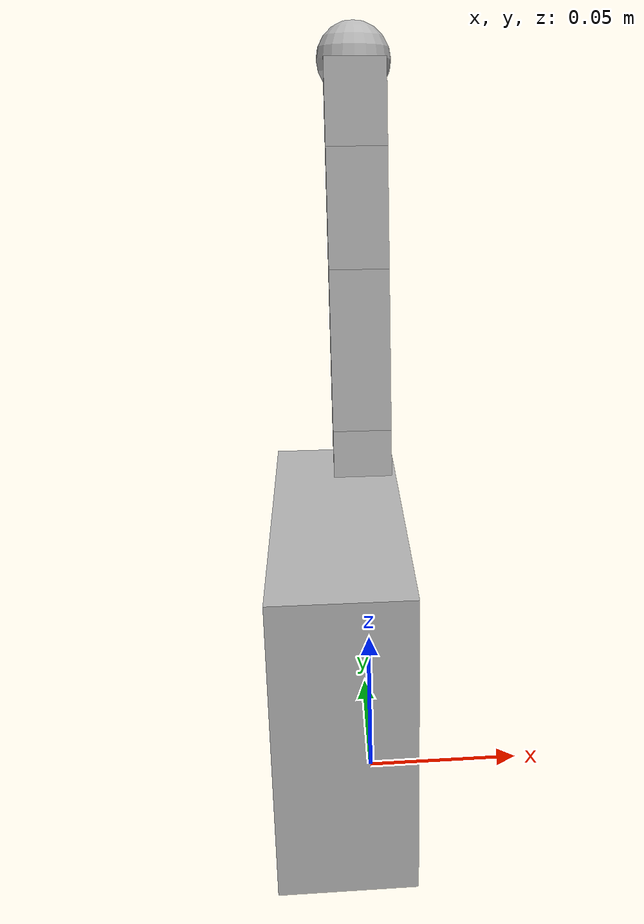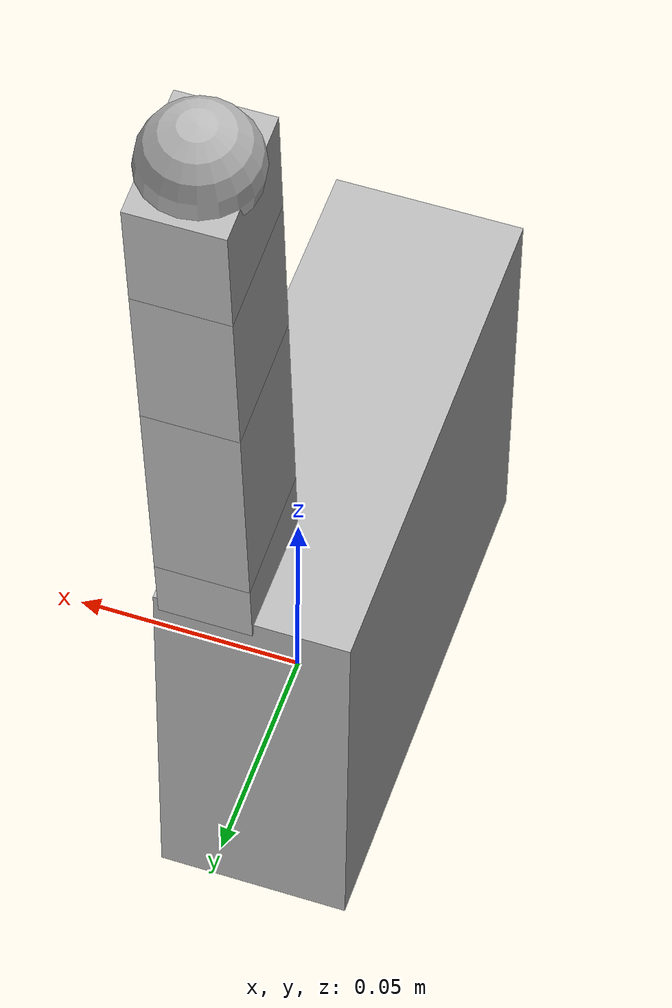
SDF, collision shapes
<?xml version='1.0'?>
<sdf version='1.6'>
  <model name='allegro_hand_right'>
    <link name='hand_root'>
      <pose frame=''>0 0 0 0 -0 0</pose>
      <inertial>
        <pose frame=''>0 0 0 0 -0 0</pose>
        <mass>0.4154</mass>
        <inertia>
          <ixx>    2.089e-03</ixx>
          <ixy>-0.003635e-03</ixy>
          <ixz>   0.2233e-03</ixz>
          <iyy>    1.829e-03</iyy>
          <iyz> -0.01756e-03</iyz>
          <izz>   0.4825e-03</izz>
        </inertia>
      </inertial>
      <collision name='hand_root_fixed_joint_lump__palm_link_collision'>
        <pose frame=''>-0.0093 0 0.0475 0 -0 0</pose>
        <geometry>
          <box>
            <size>0.0408 0.113 0.095</size>
          </box>
        </geometry>
      </collision>
      <visual name='hand_root_fixed_joint_lump__palm_link_visual'>
        <pose frame=''>0 0 0.095 0 -0 0</pose>
        <geometry>
          <mesh>
            <scale>1 1 1</scale>
            <uri>../meshes/base_link.obj</uri>
          </mesh>
        </geometry>
      </visual>
    </link>
    <link name='link_0'>
      <pose frame=''>0 0.0435 0.093458 -0.087267 0 0</pose>
      <inertial>
        <pose frame=''>0 0 0 0 -0 0</pose>
        <mass>0.0119</mass>
        <inertia>
          <ixx>   1.954e-06</ixx>
          <ixy>0.003034e-06</ixy>
          <ixz> 0.08923e-06</ixz>
          <iyy>   1.179e-06</iyy>
          <iyz>-0.03707e-06</iyz>
          <izz>   1.497e-06</izz>
        </inertia>
      </inertial>
      <collision name='link_0_collision'>
        <pose frame=''>0 0 0.0082 0 -0 0</pose>
        <geometry>
          <box>
            <size>0.0196 0.0275 0.0164</size>
          </box>
        </geometry>
      </collision>
      <visual name='link_0_visual'>
        <pose frame=''>0 0 0 0 -0 0</pose>
        <geometry>
          <mesh>
            <scale>1 1 1</scale>
            <uri>../meshes/link_0.0.obj</uri>
          </mesh>
        </geometry>
      </visual>
    </link>
    <joint name='joint_0' type='revolute'>
      <child>link_0</child>
      <parent>hand_root</parent>
      <axis>
        <xyz>0 0.087156 0.996195</xyz>
        <limit>
          <lower>-0.47</lower>
          <upper>0.47</upper>
          <effort>0.7</effort>
        </limit>
        <dynamics>
          <damping>1.5e-2</damping>
        </dynamics>
        <use_parent_model_frame>1</use_parent_model_frame>
      </axis>
    </joint>
    <link name='link_1'>
      <pose frame=''>0 0.044929 0.109796 -0.087267 0 0</pose>
      <inertial>
        <pose frame=''>0 0 0 0 -0 0</pose>
        <mass>0.065</mass>
        <inertia>
          <ixx>  7.192e-05</ixx>
          <ixy>          0</ixy>
          <ixz>          0</ixz>
          <iyy>  7.438e-05</iyy>
          <iyz>0.07322e-05</iyz>
          <izz> 0.5406e-05</izz>
        </inertia>
      </inertial>
      <collision name='link_1_collision'>
        <pose frame=''>0 0 0.027 0 -0 0</pose>
        <geometry>
          <box>
            <size>0.0196 0.0275 0.054</size>
          </box>
        </geometry>
      </collision>
      <visual name='link_1_visual'>
        <pose frame=''>0 0 0 0 -0 0</pose>
        <geometry>
          <mesh>
            <scale>1 1 1</scale>
            <uri>../meshes/link_1.0.obj</uri>
          </mesh>
        </geometry>
      </visual>
    </link>
    <joint name='joint_1' type='revolute'>
      <child>link_1</child>
      <parent>link_0</parent>
      <axis>
        <xyz>0 0.996195 -0.087156</xyz>
        <limit>
          <lower>-0.196</lower>
          <upper>1.61</upper>
          <effort>0.7</effort>
        </limit>
        <dynamics>
          <damping>1.5e-2</damping>
        </dynamics>
        <use_parent_model_frame>1</use_parent_model_frame>
      </axis>
    </joint>
    <link name='link_2'>
      <pose frame=''>0 0.049636 0.16359 -0.087267 0 0</pose>
      <inertial>
        <pose frame=''>0 0 0 0 -0 0</pose>
        <mass>0.0355</mass>
        <inertia>
          <ixx>     3.169e-05</ixx>
          <ixy> 0.0001071e-05</ixy>
          <ixz>-0.0004913e-05</ixz>
          <iyy>     3.105e-05</iyy>
          <iyz>  0.003875e-05</iyz>
          <izz>    0.3203e-05</izz>
        </inertia>
      </inertial>
      <collision name='link_2_collision'>
        <pose frame=''>0 0 0.0192 0 -0 0</pose>
        <geometry>
          <box>
            <size>0.0196 0.0275 0.0384</size>
          </box>
        </geometry>
      </collision>
      <visual name='link_2_visual'>
        <pose frame=''>0 0 0 0 -0 0</pose>
        <geometry>
          <mesh>
            <scale>1 1 1</scale>
            <uri>../meshes/link_2.0.obj</uri>
          </mesh>
        </geometry>
      </visual>
    </link>
    <joint name='joint_2' type='revolute'>
      <child>link_2</child>
      <parent>link_1</parent>
      <axis>
        <xyz>0 0.996195 -0.087156</xyz>
        <limit>
          <lower>-0.174</lower>
          <upper>1.709</upper>
          <effort>0.7</effort>
        </limit>
        <dynamics>
          <damping>1.5e-2</damping>
        </dynamics>
        <use_parent_model_frame>1</use_parent_model_frame>
      </axis>
    </joint>
    <link name='link_3'>
      <pose frame=''>0 0.052983 0.201844 -0.087267 0 0</pose>
      <inertial>
        <pose frame=''>0 0 0 0 -0 0</pose>
        <mass>0.0264</mass>
        <inertia>
          <ixx>   1.263e-05</ixx>
          <ixy> 0.00021e-05</ixy>
          <ixz>-0.00098e-05</ixz>
          <iyy>   1.182e-05</iyy>
          <iyz> -0.0013e-05</iyz>
          <izz>  0.2484e-05</izz>
        </inertia>
      </inertial>
      <collision name='link_3_collision'>
        <pose frame=''>0 0 0.01335 0 -0 0</pose>
        <geometry>
          <box>
            <size>0.0196 0.0275 0.0267</size>
          </box>
        </geometry>
	    </collision>
      <collision name='link_3_tip_collision_1'>
        <pose frame=''>0 0 0.0267 0 -0 0</pose>
        <geometry>
          <sphere>
            <radius>0.012</radius>
          </sphere>
        </geometry>
      </collision>
      <visual name='link_3_visual'>
        <pose frame=''>0 0 0 0 -0 0</pose>
        <geometry>
          <mesh>
            <scale>1 1 1</scale>
            <uri>../meshes/link_3.0.obj</uri>
          </mesh>
        </geometry>
      </visual>
      <visual name='link_3_tip_visual_1'>
        <pose frame=''>0 0 0.0267 0 -0 0</pose>
        <geometry>
          <mesh>
            <scale>1 1 1</scale>
            <uri>../meshes/link_3.0_tip.obj</uri>
          </mesh>
        </geometry>
      </visual>
    </link>
    <joint name='joint_3' type='revolute'>
      <child>link_3</child>
      <parent>link_2</parent>
      <axis>
        <xyz>0 0.996195 -0.087156</xyz>
        <limit>
          <lower>-0.227</lower>
          <upper>1.618</upper>
          <effort>0.7</effort>
        </limit>
        <dynamics>
          <damping>1.5e-2</damping>
        </dynamics>
        <use_parent_model_frame>1</use_parent_model_frame>
      </axis>
    </joint>
  </model>
</sdf>
